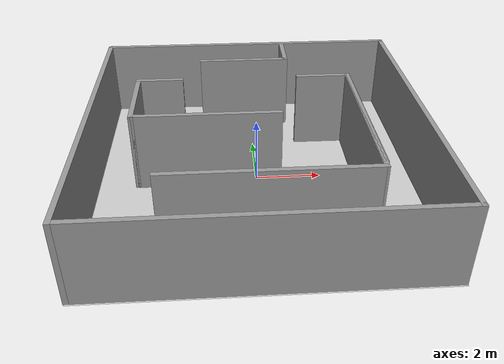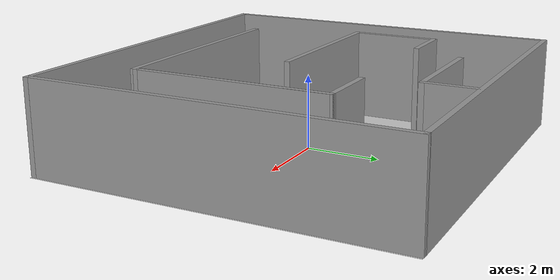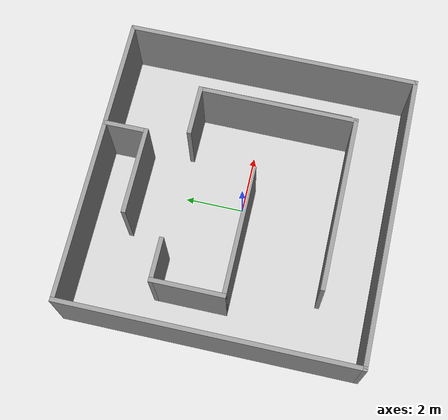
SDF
<sdf version="1.7">
 <world name="default">
  <light name="sun" type="directional">
   <pose>0 0 10 0 -0 0</pose>
   <diffuse>0.8 0.8 0.8 1</diffuse>
   <specular>0.2 0.2 0.2 1</specular>
   <attenuation>
    <range>1000</range>
    <constant>0.9</constant>
    <linear>0.01</linear>
    <quadratic>0.001</quadratic>
   </attenuation>
   <direction>-0.5 0.1 -0.9</direction>
   <spot><inner_angle>0</inner_angle><outer_angle>0</outer_angle><falloff>0</falloff></spot>
  </light>
  <gravity>0 0 -9.8</gravity>
  <magnetic_field>6e-06 2.3e-05 -4.2e-05</magnetic_field>
  <atmosphere type="adiabatic"/>
  <physics type="ode">
   <max_step_size>0.001</max_step_size>
   <real_time_factor>1</real_time_factor>
   <real_time_update_rate>1000</real_time_update_rate>
  </physics>
  <scene><ambient>0.4 0.4 0.4 1</ambient><background>0.7 0.7 0.7 1</background><shadows>1</shadows></scene>
  <spherical_coordinates>
   <surface_model>EARTH_WGS84</surface_model>
   <latitude_deg>0</latitude_deg>
   <longitude_deg>0</longitude_deg>
   <elevation>0</elevation>
   <heading_deg>0</heading_deg>
  </spherical_coordinates>
  <model name="map_1">
   <static>1</static>
   <link name="link">
    <collision name="collision">
     <geometry><plane><normal>0 0 1</normal><size>10 10</size></plane></geometry>
     <surface><friction><ode><mu>100</mu><mu2>50</mu2></ode></friction></surface>
    </collision>
    <visual name="visual">
     <cast_shadows>0</cast_shadows>
     <geometry><plane><normal>0 0 1</normal><size>10 10</size></plane></geometry>
     <material>
      <script>
       <uri>model://map_1/materials/scripts</uri>
       <uri>model://map_1/materials/textures/</uri>
       <name>Map1/Image</name>
      </script>
     </material>
    </visual>
   </link>
  </model>
  <model name="walls">
   <pose>-0.0134 0.026659 0 0 -0 0</pose>
   <link name="Wall_0">
    <collision name="Wall_0_Collision">
     <geometry><box><size>10 0.15 2.5</size></box></geometry>
     <pose>0 0 1.25 0 -0 0</pose>
    </collision>
    <visual name="Wall_0_Visual">
     <pose>0 0 1.25 0 -0 0</pose>
     <geometry><box><size>10 0.15 2.5</size></box></geometry>
     <material>
      <script><uri>file://media/materials/scripts/gazebo.material</uri><name>Gazebo/Grey</name></script>
      <ambient>1 1 1 1</ambient>
     </material>
     <meta><layer>0</layer></meta>
    </visual>
    <pose>-0 4.925 0 0 -0 0</pose>
   </link>
   <link name="Wall_10">
    <collision name="Wall_10_Collision">
     <geometry><box><size>2.5 0.15 2.5</size></box></geometry>
     <pose>0 0 1.25 0 -0 0</pose>
    </collision>
    <visual name="Wall_10_Visual">
     <pose>0 0 1.25 0 -0 0</pose>
     <geometry><box><size>2.5 0.15 2.5</size></box></geometry>
     <material>
      <script><uri>file://media/materials/scripts/gazebo.material</uri><name>Gazebo/Grey</name></script>
      <ambient>1 1 1 1</ambient>
     </material>
     <meta><layer>0</layer></meta>
    </visual>
    <pose>-3.65194 0.925168 0 0 -0 -1.5708</pose>
   </link>
   <link name="Wall_11">
    <collision name="Wall_11_Collision">
     <geometry><box><size>4.5 0.15 2.5</size></box></geometry>
     <pose>0 0 1.25 0 -0 0</pose>
    </collision>
    <visual name="Wall_11_Visual">
     <pose>0 0 1.25 0 -0 0</pose>
     <geometry><box><size>4.5 0.15 2.5</size></box></geometry>
     <material>
      <script><uri>file://media/materials/scripts/gazebo.material</uri><name>Gazebo/Grey</name></script>
      <ambient>1 1 1 1</ambient>
     </material>
     <meta><layer>0</layer></meta>
    </visual>
    <pose>-1.47694 -0.249832 0 0 -0 0</pose>
   </link>
   <link name="Wall_13">
    <collision name="Wall_13_Collision">
     <geometry><box><size>1.75 0.15 2.5</size></box></geometry>
     <pose>0 0 1.25 0 -0 0</pose>
    </collision>
    <visual name="Wall_13_Visual">
     <pose>0 0 1.25 0 -0 0</pose>
     <geometry><box><size>1.75 0.15 2.5</size></box></geometry>
     <material>
      <script><uri>file://media/materials/scripts/gazebo.material</uri><name>Gazebo/Grey</name></script>
      <ambient>1 1 1 1</ambient>
     </material>
     <meta><layer>0</layer></meta>
    </visual>
    <pose>2.33176 2.11362 0 0 -0 0</pose>
   </link>
   <link name="Wall_14">
    <collision name="Wall_14_Collision">
     <geometry><box><size>5.25 0.15 2.5</size></box></geometry>
     <pose>0 0 1.25 0 -0 0</pose>
    </collision>
    <visual name="Wall_14_Visual">
     <pose>0 0 1.25 0 -0 0</pose>
     <geometry><box><size>5.25 0.15 2.5</size></box></geometry>
     <material>
      <script><uri>file://media/materials/scripts/gazebo.material</uri><name>Gazebo/Grey</name></script>
      <ambient>1 1 1 1</ambient>
     </material>
     <meta><layer>0</layer></meta>
    </visual>
    <pose>3.13176 -0.43638 0 0 -0 -1.5708</pose>
   </link>
   <link name="Wall_16">
    <collision name="Wall_16_Collision">
     <geometry><box><size>6 0.15 2.5</size></box></geometry>
     <pose>0 0 1.25 0 -0 0</pose>
    </collision>
    <visual name="Wall_16_Visual">
     <pose>0 0 1.25 0 -0 0</pose>
     <geometry><box><size>6 0.15 2.5</size></box></geometry>
     <material>
      <script><uri>file://media/materials/scripts/gazebo.material</uri><name>Gazebo/Grey</name></script>
      <ambient>1 1 1 1</ambient>
     </material>
     <meta><layer>0</layer></meta>
    </visual>
    <pose>0.179156 -3.21321 0 0 -0 0</pose>
   </link>
   <link name="Wall_17">
    <collision name="Wall_17_Collision">
     <geometry><box><size>5.4769 0.15 2.5</size></box></geometry>
     <pose>0 0 1.25 0 -0 0</pose>
    </collision>
    <visual name="Wall_17_Visual">
     <pose>0 0 1.25 0 -0 0</pose>
     <geometry><box><size>5.4769 0.15 2.5</size></box></geometry>
     <material>
      <script><uri>file://media/materials/scripts/gazebo.material</uri><name>Gazebo/Grey</name></script>
      <ambient>1 1 1 1</ambient>
     </material>
     <meta><layer>0</layer></meta>
    </visual>
    <pose>3.11796 -0.549793 0 0 -0 1.56561</pose>
   </link>
   <link name="Wall_2">
    <collision name="Wall_2_Collision">
     <geometry><box><size>10 0.15 2.5</size></box></geometry>
     <pose>0 0 1.25 0 -0 0</pose>
    </collision>
    <visual name="Wall_2_Visual">
     <pose>0 0 1.25 0 -0 0</pose>
     <geometry><box><size>10 0.15 2.5</size></box></geometry>
     <material>
      <script><uri>file://media/materials/scripts/gazebo.material</uri><name>Gazebo/Grey</name></script>
      <ambient>1 1 1 1</ambient>
     </material>
     <meta><layer>0</layer></meta>
    </visual>
    <pose>4.925 0 0 0 -0 -1.5708</pose>
   </link>
   <link name="Wall_3">
    <collision name="Wall_3_Collision">
     <geometry><box><size>10 0.15 2.5</size></box></geometry>
     <pose>0 0 1.25 0 -0 0</pose>
    </collision>
    <visual name="Wall_3_Visual">
     <pose>0 0 1.25 0 -0 0</pose>
     <geometry><box><size>10 0.15 2.5</size></box></geometry>
     <material>
      <script><uri>file://media/materials/scripts/gazebo.material</uri><name>Gazebo/Grey</name></script>
      <ambient>1 1 1 1</ambient>
     </material>
     <meta><layer>0</layer></meta>
    </visual>
    <pose>-0 -4.925 0 0 -0 3.14159</pose>
   </link>
   <link name="Wall_4">
    <collision name="Wall_4_Collision">
     <geometry><box><size>10 0.15 2.5</size></box></geometry>
     <pose>0 0 1.25 0 -0 0</pose>
    </collision>
    <visual name="Wall_4_Visual">
     <pose>0 0 1.25 0 -0 0</pose>
     <geometry><box><size>10 0.15 2.5</size></box></geometry>
     <material>
      <script><uri>file://media/materials/scripts/gazebo.material</uri><name>Gazebo/Grey</name></script>
      <ambient>1 1 1 1</ambient>
     </material>
     <meta><layer>0</layer></meta>
    </visual>
    <pose>-4.925 0 0 0 -0 1.5708</pose>
   </link>
   <link name="Wall_6">
    <collision name="Wall_6_Collision">
     <geometry><box><size>1.5 0.15 2.5</size></box></geometry>
     <pose>0 0 1.25 0 -0 0</pose>
    </collision>
    <visual name="Wall_6_Visual">
     <pose>0 0 1.25 0 -0 0</pose>
     <geometry><box><size>1.5 0.15 2.5</size></box></geometry>
     <material>
      <script><uri>file://media/materials/scripts/gazebo.material</uri><name>Gazebo/Grey</name></script>
      <ambient>1 1 1 1</ambient>
     </material>
     <meta><layer>0</layer></meta>
    </visual>
    <pose>1.23582 4.19619 0 0 -0 -1.5708</pose>
   </link>
   <link name="Wall_7">
    <collision name="Wall_7_Collision">
     <geometry><box><size>3 0.15 2.5</size></box></geometry>
     <pose>0 0 1.25 0 -0 0</pose>
    </collision>
    <visual name="Wall_7_Visual">
     <pose>0 0 1.25 0 -0 0</pose>
     <geometry><box><size>3 0.15 2.5</size></box></geometry>
     <material>
      <script><uri>file://media/materials/scripts/gazebo.material</uri><name>Gazebo/Grey</name></script>
      <ambient>1 1 1 1</ambient>
     </material>
     <meta><layer>0</layer></meta>
    </visual>
    <pose>-0.189176 3.52119 0 0 -0 3.14159</pose>
   </link>
   <link name="Wall_9">
    <collision name="Wall_9_Collision">
     <geometry><box><size>1.5 0.15 2.5</size></box></geometry>
     <pose>0 0 1.25 0 -0 0</pose>
    </collision>
    <visual name="Wall_9_Visual">
     <pose>0 0 1.25 0 -0 0</pose>
     <geometry><box><size>1.5 0.15 2.5</size></box></geometry>
     <material>
      <script><uri>file://media/materials/scripts/gazebo.material</uri><name>Gazebo/Grey</name></script>
      <ambient>1 1 1 1</ambient>
     </material>
     <meta><layer>0</layer></meta>
    </visual>
    <pose>-2.97694 2.10017 0 0 -0 3.14159</pose>
   </link>
   <static>1</static>
  </model>
 </world>
</sdf>
